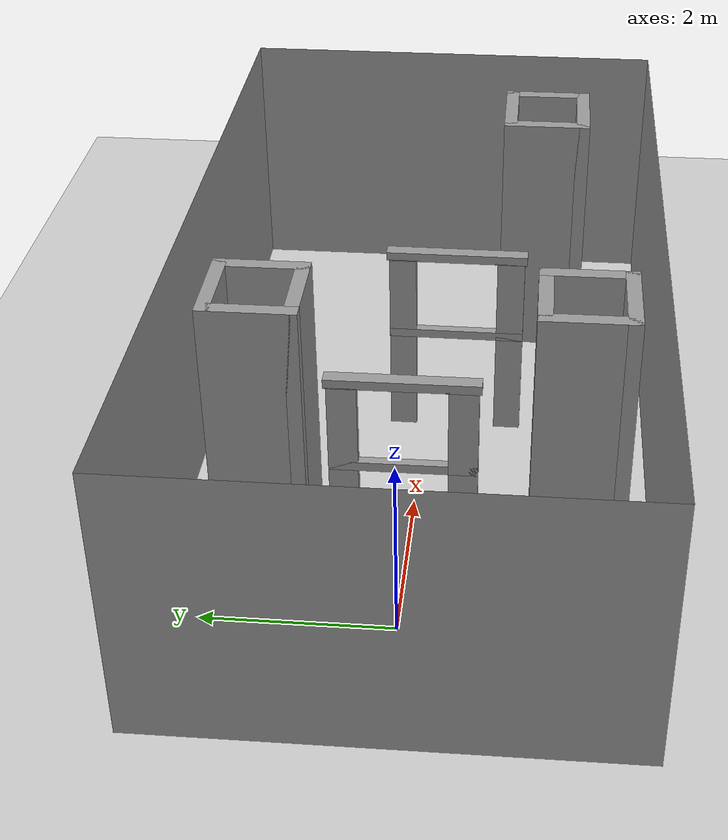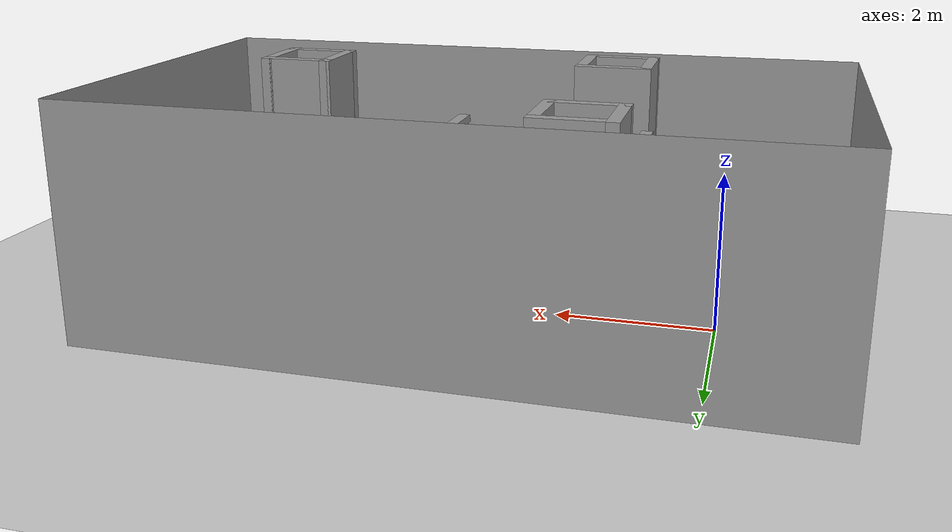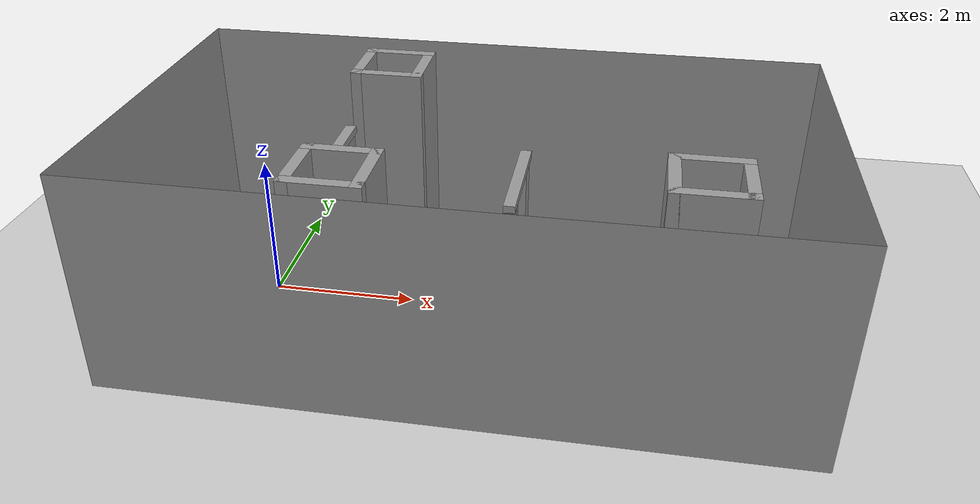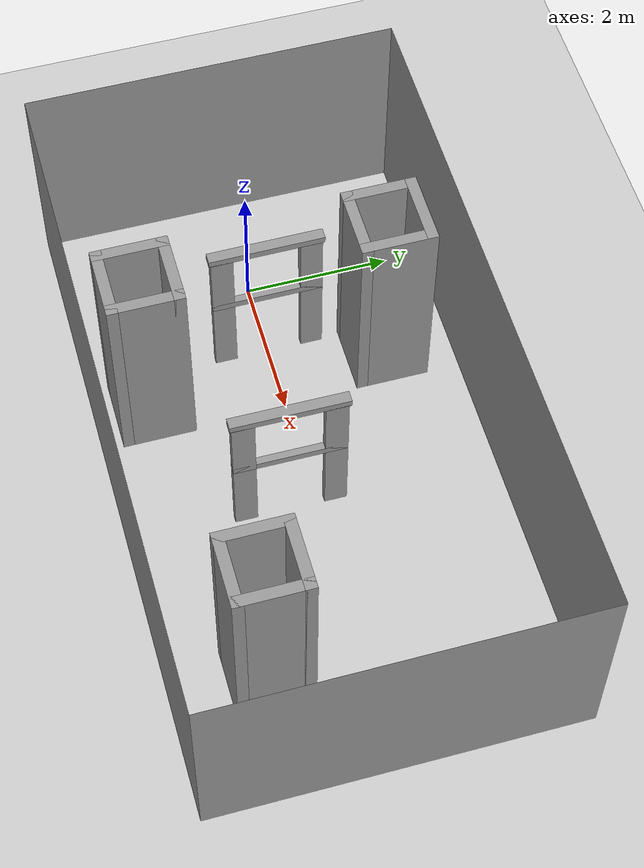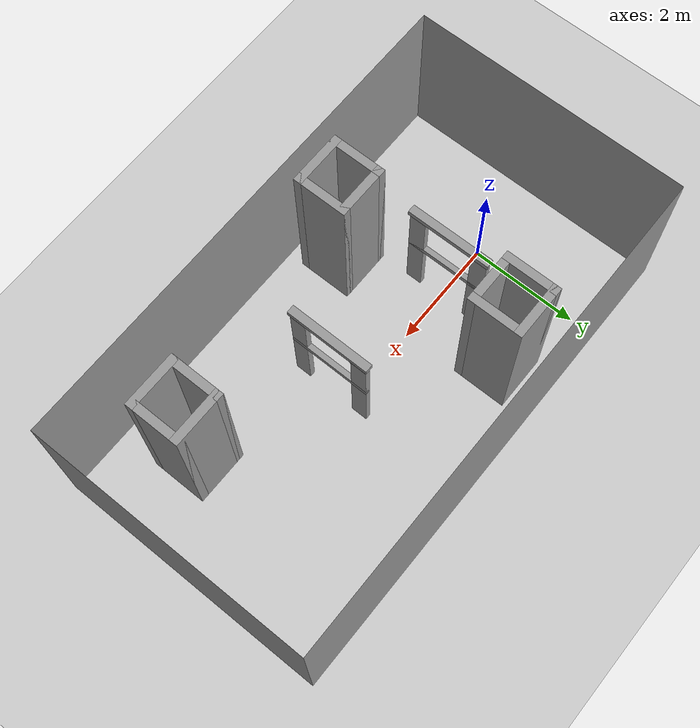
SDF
<sdf version="1.6">
 <world name="default">
  <light name="sun" type="directional">
   <pose>0 0 10 0 -0 0</pose>
   <diffuse>0.8 0.8 0.8 1</diffuse>
   <specular>0.2 0.2 0.2 1</specular>
   <attenuation>
    <range>1000</range>
    <constant>0.9</constant>
    <linear>0.01</linear>
    <quadratic>0.001</quadratic>
   </attenuation>
   <direction>-0.5 0.1 -0.9</direction>
  </light>
  <model name="ground_plane">
   <static>1</static>
   <link name="link">
    <collision name="collision">
     <geometry><plane><normal>0 0 1</normal><size>100 100</size></plane></geometry>
     <surface><friction><ode><mu>100</mu><mu2>50</mu2></ode></friction></surface>
    </collision>
    <visual name="visual">
     <cast_shadows>0</cast_shadows>
     <geometry><plane><normal>0 0 1</normal><size>100 100</size></plane></geometry>
     <material>
      <script><uri>file://media/materials/scripts/gazebo.material</uri><name>Gazebo/Grey</name></script>
     </material>
    </visual>
   </link>
  </model>
  <gravity>0 0 -9.8</gravity>
  <magnetic_field>6e-06 2.3e-05 -4.2e-05</magnetic_field>
  <atmosphere type="adiabatic"/>
  <physics name="default_physics" default="0" type="ode">
   <max_step_size>0.001</max_step_size>
   <real_time_factor>1</real_time_factor>
   <real_time_update_rate>1000</real_time_update_rate>
  </physics>
  <scene><ambient>0.4 0.4 0.4 1</ambient><background>0.7 0.7 0.7 1</background><shadows>1</shadows></scene>
  <spherical_coordinates>
   <surface_model>EARTH_WGS84</surface_model>
   <latitude_deg>0</latitude_deg>
   <longitude_deg>0</longitude_deg>
   <elevation>0</elevation>
   <heading_deg>0</heading_deg>
  </spherical_coordinates>
  <model name="kuang">
   <pose>1.01396 0.020902 0 0 0 -1.5691</pose>
   <link name="Floor_4">
    <collision name="Floor_4_Collision">
     <geometry><box><size>1.5 0.1 0.1</size></box></geometry>
     <pose>0 0 0.05 0 -0 0</pose>
    </collision>
    <visual name="Floor_4_Visual">
     <pose>0 0 0.05 0 -0 0</pose>
     <geometry><box><size>1.5 0.1 0.1</size></box></geometry>
     <material>
      <script><uri>file://media/materials/scripts/gazebo.material</uri><name>Gazebo/Grey</name></script>
      <ambient>1 1 1 1</ambient>
     </material>
     <meta><layer>1</layer></meta>
    </visual>
    <pose>0 0 1.2 0 -0 0</pose>
   </link>
   <link name="Floor_5">
    <collision name="Floor_5_Collision">
     <geometry><box><size>1.55 0.15 0.1</size></box></geometry>
     <pose>0 0 0.05 0 -0 0</pose>
    </collision>
    <visual name="Floor_5_Visual">
     <pose>0 0 0.05 0 -0 0</pose>
     <geometry><box><size>1.55 0.15 0.1</size></box></geometry>
     <material>
      <script><uri>file://media/materials/scripts/gazebo.material</uri><name>Gazebo/Grey</name></script>
      <ambient>1 1 1 1</ambient>
     </material>
     <meta><layer>2</layer></meta>
    </visual>
    <pose>0 0 2.2 0 -0 0</pose>
   </link>
   <link name="Wall_0">
    <collision name="Wall_0_Collision">
     <geometry><box><size>0.3 0.1 1.2</size></box></geometry>
     <pose>0 0 0.6 0 -0 0</pose>
    </collision>
    <visual name="Wall_0_Visual">
     <pose>0 0 0.6 0 -0 0</pose>
     <geometry><box><size>0.3 0.1 1.2</size></box></geometry>
     <material>
      <script><uri>file://media/materials/scripts/gazebo.material</uri><name>Gazebo/Grey</name></script>
      <ambient>1 1 1 1</ambient>
     </material>
     <meta><layer>0</layer></meta>
    </visual>
    <pose>-0.6 0 0 0 -0 0</pose>
   </link>
   <link name="Wall_15">
    <collision name="Wall_15_Collision">
     <geometry><box><size>0.3 0.1 1</size></box></geometry>
     <pose>0 0 0.5 0 -0 0</pose>
    </collision>
    <visual name="Wall_15_Visual">
     <pose>0 0 0.5 0 -0 0</pose>
     <geometry><box><size>0.3 0.1 1</size></box></geometry>
     <material>
      <script><uri>file://media/materials/scripts/gazebo.material</uri><name>Gazebo/Grey</name></script>
      <ambient>1 1 1 1</ambient>
     </material>
     <meta><layer>1</layer></meta>
    </visual>
    <pose>-0.6 0 1.2 0 -0 0</pose>
   </link>
   <link name="Wall_16">
    <collision name="Wall_16_Collision">
     <geometry><box><size>0.3 0.1 1</size></box></geometry>
     <pose>0 0 0.5 0 -0 0</pose>
    </collision>
    <visual name="Wall_16_Visual">
     <pose>0 0 0.5 0 -0 0</pose>
     <geometry><box><size>0.3 0.1 1</size></box></geometry>
     <material>
      <script><uri>file://media/materials/scripts/gazebo.material</uri><name>Gazebo/Grey</name></script>
      <ambient>1 1 1 1</ambient>
     </material>
     <meta><layer>1</layer></meta>
    </visual>
    <pose>0.6 0 1.2 0 -0 0</pose>
   </link>
   <link name="Wall_17">
    <collision name="Wall_17_Collision">
     <geometry><box><size>0.35 0.15 0.01</size></box></geometry>
     <pose>0 0 0.005 0 -0 0</pose>
    </collision>
    <visual name="Wall_17_Visual">
     <pose>0 0 0.005 0 -0 0</pose>
     <geometry><box><size>0.35 0.15 0.01</size></box></geometry>
     <material>
      <script><uri>file://media/materials/scripts/gazebo.material</uri><name>Gazebo/Grey</name></script>
      <ambient>1 1 1 1</ambient>
     </material>
     <meta><layer>2</layer></meta>
    </visual>
    <pose>-0.6 0 2.2 0 -0 0</pose>
   </link>
   <link name="Wall_18">
    <collision name="Wall_18_Collision">
     <geometry><box><size>0.35 0.15 0.01</size></box></geometry>
     <pose>0 0 0.005 0 -0 0</pose>
    </collision>
    <visual name="Wall_18_Visual">
     <pose>0 0 0.005 0 -0 0</pose>
     <geometry><box><size>0.35 0.15 0.01</size></box></geometry>
     <material>
      <script><uri>file://media/materials/scripts/gazebo.material</uri><name>Gazebo/Grey</name></script>
      <ambient>1 1 1 1</ambient>
     </material>
     <meta><layer>2</layer></meta>
    </visual>
    <pose>0.6 0 2.2 0 -0 0</pose>
   </link>
   <link name="Wall_2">
    <collision name="Wall_2_Collision">
     <geometry><box><size>0.3 0.1 1.2</size></box></geometry>
     <pose>0 0 0.6 0 -0 0</pose>
    </collision>
    <visual name="Wall_2_Visual">
     <pose>0 0 0.6 0 -0 0</pose>
     <geometry><box><size>0.3 0.1 1.2</size></box></geometry>
     <material>
      <script><uri>file://media/materials/scripts/gazebo.material</uri><name>Gazebo/Grey</name></script>
      <ambient>1 1 1 1</ambient>
     </material>
     <meta><layer>0</layer></meta>
    </visual>
    <pose>0.6 0 0 0 -0 0</pose>
   </link>
   <static>1</static>
  </model>
  <model name="ok3*5*9">
   <pose>2.94085 -0.037403 0 0 -0 0</pose>
   <link name="Wall_24">
    <collision name="Wall_24_Collision">
     <geometry><box><size>5 0 3</size></box></geometry>
     <pose>0 0 1.5 0 -0 0</pose>
    </collision>
    <visual name="Wall_24_Visual">
     <pose>0 0 1.5 0 -0 0</pose>
     <geometry><box><size>5 0 3</size></box></geometry>
     <material>
      <script><uri>file://media/materials/scripts/gazebo.material</uri><name>Gazebo/Grey</name></script>
      <ambient>1 1 1 1</ambient>
     </material>
     <meta><layer>0</layer></meta>
    </visual>
    <pose>-4.5 0 0 0 -0 -1.5708</pose>
   </link>
   <link name="Wall_25">
    <collision name="Wall_25_Collision">
     <geometry><box><size>9 0 3</size></box></geometry>
     <pose>0 0 1.5 0 -0 0</pose>
    </collision>
    <visual name="Wall_25_Visual">
     <pose>0 0 1.5 0 -0 0</pose>
     <geometry><box><size>9 0 3</size></box></geometry>
     <material>
      <script><uri>file://media/materials/scripts/gazebo.material</uri><name>Gazebo/Grey</name></script>
      <ambient>1 1 1 1</ambient>
     </material>
     <meta><layer>0</layer></meta>
    </visual>
    <pose>0 -2.5 0 0 -0 0</pose>
   </link>
   <link name="Wall_27">
    <collision name="Wall_27_Collision">
     <geometry><box><size>9 0 3</size></box></geometry>
     <pose>0 0 1.5 0 -0 0</pose>
    </collision>
    <visual name="Wall_27_Visual">
     <pose>0 0 1.5 0 -0 0</pose>
     <geometry><box><size>9 0 3</size></box></geometry>
     <material>
      <script><uri>file://media/materials/scripts/gazebo.material</uri><name>Gazebo/Grey</name></script>
      <ambient>1 1 1 1</ambient>
     </material>
     <meta><layer>0</layer></meta>
    </visual>
    <pose>0 2.5 0 0 -0 0</pose>
   </link>
   <link name="Wall_29">
    <collision name="Wall_29_Collision">
     <geometry><box><size>5 0 3</size></box></geometry>
     <pose>0 0 1.5 0 -0 0</pose>
    </collision>
    <visual name="Wall_29_Visual">
     <pose>0 0 1.5 0 -0 0</pose>
     <geometry><box><size>5 0 3</size></box></geometry>
     <material>
      <script><uri>file://media/materials/scripts/gazebo.material</uri><name>Gazebo/Grey</name></script>
      <ambient>1 1 1 1</ambient>
     </material>
     <meta><layer>0</layer></meta>
    </visual>
    <pose>4.5 0 0 0 -0 -1.5708</pose>
   </link>
   <static>1</static>
  </model>
  <model name="1*1*3zhu">
   <pose>1.48082 1.51221 0 0 -0 0</pose>
   <link name="Wall_0">
    <collision name="Wall_0_Collision">
     <geometry><box><size>1 0.15 3</size></box></geometry>
     <pose>0 0 1.5 0 -0 0</pose>
    </collision>
    <visual name="Wall_0_Visual">
     <pose>0 0 1.5 0 -0 0</pose>
     <geometry><box><size>1 0.15 3</size></box></geometry>
     <material>
      <script><uri>file://media/materials/scripts/gazebo.material</uri><name>Gazebo/Grey</name></script>
      <ambient>1 1 1 1</ambient>
     </material>
     <meta><layer>0</layer></meta>
    </visual>
    <pose>-0.425 0 0 0 -0 1.5708</pose>
   </link>
   <link name="Wall_1">
    <collision name="Wall_1_Collision">
     <geometry><box><size>1 0.15 3</size></box></geometry>
     <pose>0 0 1.5 0 -0 0</pose>
    </collision>
    <visual name="Wall_1_Visual">
     <pose>0 0 1.5 0 -0 0</pose>
     <geometry><box><size>1 0.15 3</size></box></geometry>
     <material>
      <script><uri>file://media/materials/scripts/gazebo.material</uri><name>Gazebo/Grey</name></script>
      <ambient>1 1 1 1</ambient>
     </material>
     <meta><layer>0</layer></meta>
    </visual>
    <pose>-0 0.425 0 0 -0 0</pose>
   </link>
   <link name="Wall_2">
    <collision name="Wall_2_Collision">
     <geometry><box><size>1 0.15 3</size></box></geometry>
     <pose>0 0 1.5 0 -0 0</pose>
    </collision>
    <visual name="Wall_2_Visual">
     <pose>0 0 1.5 0 -0 0</pose>
     <geometry><box><size>1 0.15 3</size></box></geometry>
     <material>
      <script><uri>file://media/materials/scripts/gazebo.material</uri><name>Gazebo/Grey</name></script>
      <ambient>1 1 1 1</ambient>
     </material>
     <meta><layer>0</layer></meta>
    </visual>
    <pose>0.425 0 0 0 -0 -1.5708</pose>
   </link>
   <link name="Wall_3">
    <collision name="Wall_3_Collision">
     <geometry><box><size>1 0.15 3</size></box></geometry>
     <pose>0 0 1.5 0 -0 0</pose>
    </collision>
    <visual name="Wall_3_Visual">
     <pose>0 0 1.5 0 -0 0</pose>
     <geometry><box><size>1 0.15 3</size></box></geometry>
     <material>
      <script><uri>file://media/materials/scripts/gazebo.material</uri><name>Gazebo/Grey</name></script>
      <ambient>1 1 1 1</ambient>
     </material>
     <meta><layer>0</layer></meta>
    </visual>
    <pose>-0 -0.425 0 0 -0 3.14159</pose>
   </link>
   <static>1</static>
  </model>
  <model name="1*1*3zhu_0">
   <pose>1.55603 -1.75019 0 0 -0 0</pose>
   <link name="Wall_0">
    <collision name="Wall_0_Collision">
     <geometry><box><size>1 0.15 3</size></box></geometry>
     <pose>0 0 1.5 0 -0 0</pose>
    </collision>
    <visual name="Wall_0_Visual">
     <pose>0 0 1.5 0 -0 0</pose>
     <geometry><box><size>1 0.15 3</size></box></geometry>
     <material>
      <script><uri>file://media/materials/scripts/gazebo.material</uri><name>Gazebo/Grey</name></script>
      <ambient>1 1 1 1</ambient>
     </material>
     <meta><layer>0</layer></meta>
    </visual>
    <pose>-0.425 0 0 0 -0 1.5708</pose>
   </link>
   <link name="Wall_1">
    <collision name="Wall_1_Collision">
     <geometry><box><size>1 0.15 3</size></box></geometry>
     <pose>0 0 1.5 0 -0 0</pose>
    </collision>
    <visual name="Wall_1_Visual">
     <pose>0 0 1.5 0 -0 0</pose>
     <geometry><box><size>1 0.15 3</size></box></geometry>
     <material>
      <script><uri>file://media/materials/scripts/gazebo.material</uri><name>Gazebo/Grey</name></script>
      <ambient>1 1 1 1</ambient>
     </material>
     <meta><layer>0</layer></meta>
    </visual>
    <pose>-0 0.425 0 0 -0 0</pose>
   </link>
   <link name="Wall_2">
    <collision name="Wall_2_Collision">
     <geometry><box><size>1 0.15 3</size></box></geometry>
     <pose>0 0 1.5 0 -0 0</pose>
    </collision>
    <visual name="Wall_2_Visual">
     <pose>0 0 1.5 0 -0 0</pose>
     <geometry><box><size>1 0.15 3</size></box></geometry>
     <material>
      <script><uri>file://media/materials/scripts/gazebo.material</uri><name>Gazebo/Grey</name></script>
      <ambient>1 1 1 1</ambient>
     </material>
     <meta><layer>0</layer></meta>
    </visual>
    <pose>0.425 0 0 0 -0 -1.5708</pose>
   </link>
   <link name="Wall_3">
    <collision name="Wall_3_Collision">
     <geometry><box><size>1 0.15 3</size></box></geometry>
     <pose>0 0 1.5 0 -0 0</pose>
    </collision>
    <visual name="Wall_3_Visual">
     <pose>0 0 1.5 0 -0 0</pose>
     <geometry><box><size>1 0.15 3</size></box></geometry>
     <material>
      <script><uri>file://media/materials/scripts/gazebo.material</uri><name>Gazebo/Grey</name></script>
      <ambient>1 1 1 1</ambient>
     </material>
     <meta><layer>0</layer></meta>
    </visual>
    <pose>-0 -0.425 0 0 -0 3.14159</pose>
   </link>
   <static>1</static>
  </model>
  <model name="kuang_0">
   <pose>3.52553 -0.352081 0 0 0 -1.57617</pose>
   <link name="Floor_4">
    <collision name="Floor_4_Collision">
     <geometry><box><size>1.5 0.1 0.1</size></box></geometry>
     <pose>0 0 0.05 0 -0 0</pose>
    </collision>
    <visual name="Floor_4_Visual">
     <pose>0 0 0.05 0 -0 0</pose>
     <geometry><box><size>1.5 0.1 0.1</size></box></geometry>
     <material>
      <script><uri>file://media/materials/scripts/gazebo.material</uri><name>Gazebo/Grey</name></script>
      <ambient>1 1 1 1</ambient>
     </material>
     <meta><layer>1</layer></meta>
    </visual>
    <pose>0 0 1.2 0 -0 0</pose>
   </link>
   <link name="Floor_5">
    <collision name="Floor_5_Collision">
     <geometry><box><size>1.55 0.15 0.1</size></box></geometry>
     <pose>0 0 0.05 0 -0 0</pose>
    </collision>
    <visual name="Floor_5_Visual">
     <pose>0 0 0.05 0 -0 0</pose>
     <geometry><box><size>1.55 0.15 0.1</size></box></geometry>
     <material>
      <script><uri>file://media/materials/scripts/gazebo.material</uri><name>Gazebo/Grey</name></script>
      <ambient>1 1 1 1</ambient>
     </material>
     <meta><layer>2</layer></meta>
    </visual>
    <pose>0 0 2.2 0 -0 0</pose>
   </link>
   <link name="Wall_0">
    <collision name="Wall_0_Collision">
     <geometry><box><size>0.3 0.1 1.2</size></box></geometry>
     <pose>0 0 0.6 0 -0 0</pose>
    </collision>
    <visual name="Wall_0_Visual">
     <pose>0 0 0.6 0 -0 0</pose>
     <geometry><box><size>0.3 0.1 1.2</size></box></geometry>
     <material>
      <script><uri>file://media/materials/scripts/gazebo.material</uri><name>Gazebo/Grey</name></script>
      <ambient>1 1 1 1</ambient>
     </material>
     <meta><layer>0</layer></meta>
    </visual>
    <pose>-0.6 0 0 0 -0 0</pose>
   </link>
   <link name="Wall_15">
    <collision name="Wall_15_Collision">
     <geometry><box><size>0.3 0.1 1</size></box></geometry>
     <pose>0 0 0.5 0 -0 0</pose>
    </collision>
    <visual name="Wall_15_Visual">
     <pose>0 0 0.5 0 -0 0</pose>
     <geometry><box><size>0.3 0.1 1</size></box></geometry>
     <material>
      <script><uri>file://media/materials/scripts/gazebo.material</uri><name>Gazebo/Grey</name></script>
      <ambient>1 1 1 1</ambient>
     </material>
     <meta><layer>1</layer></meta>
    </visual>
    <pose>-0.6 0 1.2 0 -0 0</pose>
   </link>
   <link name="Wall_16">
    <collision name="Wall_16_Collision">
     <geometry><box><size>0.3 0.1 1</size></box></geometry>
     <pose>0 0 0.5 0 -0 0</pose>
    </collision>
    <visual name="Wall_16_Visual">
     <pose>0 0 0.5 0 -0 0</pose>
     <geometry><box><size>0.3 0.1 1</size></box></geometry>
     <material>
      <script><uri>file://media/materials/scripts/gazebo.material</uri><name>Gazebo/Grey</name></script>
      <ambient>1 1 1 1</ambient>
     </material>
     <meta><layer>1</layer></meta>
    </visual>
    <pose>0.6 0 1.2 0 -0 0</pose>
   </link>
   <link name="Wall_17">
    <collision name="Wall_17_Collision">
     <geometry><box><size>0.35 0.15 0.01</size></box></geometry>
     <pose>0 0 0.005 0 -0 0</pose>
    </collision>
    <visual name="Wall_17_Visual">
     <pose>0 0 0.005 0 -0 0</pose>
     <geometry><box><size>0.35 0.15 0.01</size></box></geometry>
     <material>
      <script><uri>file://media/materials/scripts/gazebo.material</uri><name>Gazebo/Grey</name></script>
      <ambient>1 1 1 1</ambient>
     </material>
     <meta><layer>2</layer></meta>
    </visual>
    <pose>-0.6 0 2.2 0 -0 0</pose>
   </link>
   <link name="Wall_18">
    <collision name="Wall_18_Collision">
     <geometry><box><size>0.35 0.15 0.01</size></box></geometry>
     <pose>0 0 0.005 0 -0 0</pose>
    </collision>
    <visual name="Wall_18_Visual">
     <pose>0 0 0.005 0 -0 0</pose>
     <geometry><box><size>0.35 0.15 0.01</size></box></geometry>
     <material>
      <script><uri>file://media/materials/scripts/gazebo.material</uri><name>Gazebo/Grey</name></script>
      <ambient>1 1 1 1</ambient>
     </material>
     <meta><layer>2</layer></meta>
    </visual>
    <pose>0.6 0 2.2 0 -0 0</pose>
   </link>
   <link name="Wall_2">
    <collision name="Wall_2_Collision">
     <geometry><box><size>0.3 0.1 1.2</size></box></geometry>
     <pose>0 0 0.6 0 -0 0</pose>
    </collision>
    <visual name="Wall_2_Visual">
     <pose>0 0 0.6 0 -0 0</pose>
     <geometry><box><size>0.3 0.1 1.2</size></box></geometry>
     <material>
      <script><uri>file://media/materials/scripts/gazebo.material</uri><name>Gazebo/Grey</name></script>
      <ambient>1 1 1 1</ambient>
     </material>
     <meta><layer>0</layer></meta>
    </visual>
    <pose>0.6 0 0 0 -0 0</pose>
   </link>
   <static>1</static>
  </model>
  <model name="1*1*3zhu_1">
   <pose>5.82788 -1.28244 0 0 -0 0</pose>
   <link name="Wall_0">
    <collision name="Wall_0_Collision">
     <geometry><box><size>1 0.15 3</size></box></geometry>
     <pose>0 0 1.5 0 -0 0</pose>
    </collision>
    <visual name="Wall_0_Visual">
     <pose>0 0 1.5 0 -0 0</pose>
     <geometry><box><size>1 0.15 3</size></box></geometry>
     <material>
      <script><uri>file://media/materials/scripts/gazebo.material</uri><name>Gazebo/Grey</name></script>
      <ambient>1 1 1 1</ambient>
     </material>
     <meta><layer>0</layer></meta>
    </visual>
    <pose>-0.425 0 0 0 -0 1.5708</pose>
   </link>
   <link name="Wall_1">
    <collision name="Wall_1_Collision">
     <geometry><box><size>1 0.15 3</size></box></geometry>
     <pose>0 0 1.5 0 -0 0</pose>
    </collision>
    <visual name="Wall_1_Visual">
     <pose>0 0 1.5 0 -0 0</pose>
     <geometry><box><size>1 0.15 3</size></box></geometry>
     <material>
      <script><uri>file://media/materials/scripts/gazebo.material</uri><name>Gazebo/Grey</name></script>
      <ambient>1 1 1 1</ambient>
     </material>
     <meta><layer>0</layer></meta>
    </visual>
    <pose>-0 0.425 0 0 -0 0</pose>
   </link>
   <link name="Wall_2">
    <collision name="Wall_2_Collision">
     <geometry><box><size>1 0.15 3</size></box></geometry>
     <pose>0 0 1.5 0 -0 0</pose>
    </collision>
    <visual name="Wall_2_Visual">
     <pose>0 0 1.5 0 -0 0</pose>
     <geometry><box><size>1 0.15 3</size></box></geometry>
     <material>
      <script><uri>file://media/materials/scripts/gazebo.material</uri><name>Gazebo/Grey</name></script>
      <ambient>1 1 1 1</ambient>
     </material>
     <meta><layer>0</layer></meta>
    </visual>
    <pose>0.425 0 0 0 -0 -1.5708</pose>
   </link>
   <link name="Wall_3">
    <collision name="Wall_3_Collision">
     <geometry><box><size>1 0.15 3</size></box></geometry>
     <pose>0 0 1.5 0 -0 0</pose>
    </collision>
    <visual name="Wall_3_Visual">
     <pose>0 0 1.5 0 -0 0</pose>
     <geometry><box><size>1 0.15 3</size></box></geometry>
     <material>
      <script><uri>file://media/materials/scripts/gazebo.material</uri><name>Gazebo/Grey</name></script>
      <ambient>1 1 1 1</ambient>
     </material>
     <meta><layer>0</layer></meta>
    </visual>
    <pose>-0 -0.425 0 0 -0 3.14159</pose>
   </link>
   <static>1</static>
  </model>
 </world>
</sdf>
